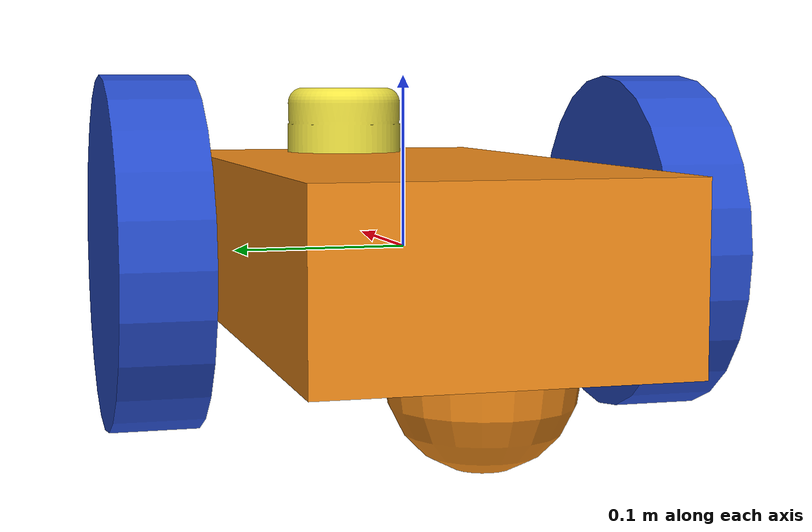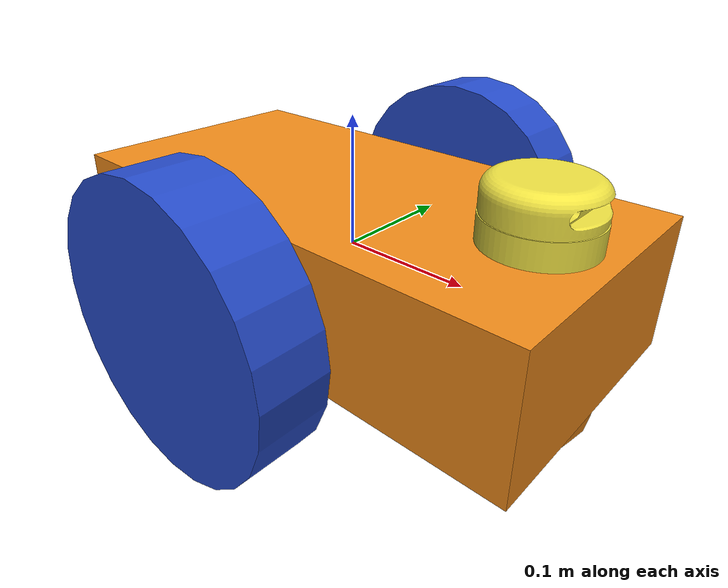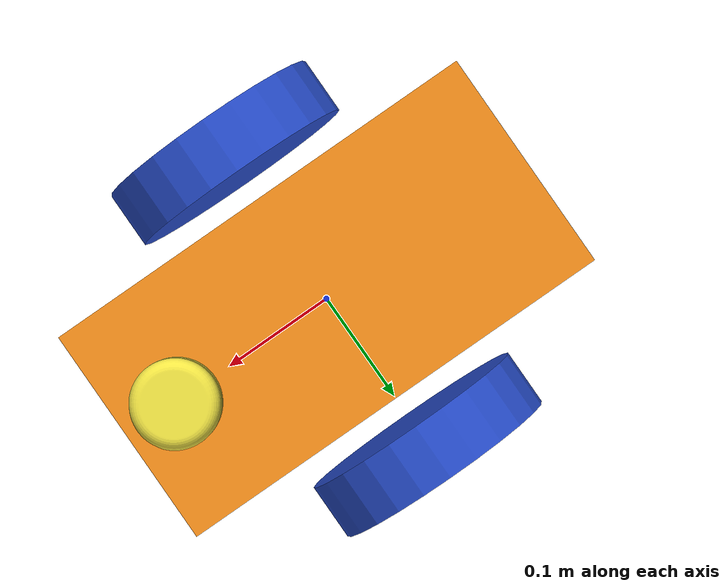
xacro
<?xml version='1.0'?>

<robot name="myrobot" xmlns:xacro="http://www.ros.org/wiki/xacro">

  <xacro:include filename="$(find abrobot_description)/urdf/robot.gazebo" />
  <xacro:include filename="$(find abrobot_description)/urdf/materials.xacro" />

  <link name='chassis'>
    <pose>0 0 0.1 0 0 0</pose>

    <inertial>
      <mass value="15.0"/>
      <origin xyz="0 0 .1" rpy=" 0 0 0"/>
      <inertia
          ixx="0.1" ixy="0" ixz="0"
          iyy="0.1" iyz="0"
          izz="0.1"
      />
    </inertial>

    <collision name='collision'>
      <geometry>
        <box size=".4 .2 .1"/>
      </geometry>
    </collision>

    <visual name='chassis_visual'>
      <origin xyz="0 0 0" rpy=" 0 0 0"/>
      <geometry>
        <box size=".4 .2 .1"/>
      </geometry>
    </visual>

    <collision name='caster_collision'>
      <origin xyz="-0.15 0 -0.05" rpy=" 0 0 0"/>
      <geometry>
        <sphere radius="0.05"/>
      </geometry>
      <surface>
        <friction>
          <ode>
            <mu>0</mu>
            <mu2>0</mu2>
            <slip1>1.0</slip1>
            <slip2>1.0</slip2>
          </ode>
        </friction>
      </surface>
    </collision>

    <visual name='caster_visual'>
      <origin xyz="-0.15 0 -0.05" rpy=" 0 0 0"/>
      <geometry>
        <sphere radius="0.05"/>
      </geometry>
    </visual>

    <collision name='caster_front_collision'>
      <origin xyz="0.15 0 -0.05" rpy=" 0 0 0"/>
      <geometry>
        <sphere radius="0.05"/>
      </geometry>
      <surface>
        <friction>
          <ode>
            <mu>0</mu>
            <mu2>0</mu2>
            <slip1>1.0</slip1>
            <slip2>1.0</slip2>
          </ode>
        </friction>
      </surface>
    </collision>

    <visual name='caster_front_visual'>
      <origin xyz="0.15 0 -0.05" rpy=" 0 0 0"/>
      <geometry>
        <sphere radius="0.05"/>
      </geometry>
    </visual>

  </link>

  <link name="left_wheel">
    <!--origin xyz="0.1 0.13 0.1" rpy="0 1.5707 1.5707"/-->
    <collision name="collision">
      <origin xyz="0 0 0" rpy="0 1.5707 1.5707"/>
      <geometry>
        <cylinder radius="0.1" length="0.05"/>
      </geometry>
    </collision>
    <visual name="left_wheel_visual">
      <origin xyz="0 0 0" rpy="0 1.5707 1.5707"/>
      <geometry>
        <cylinder radius="0.1" length="0.05"/>
      </geometry>
    </visual>
    <inertial>
      <origin xyz="0 0 0" rpy="0 1.5707 1.5707"/>
      <mass value="5"/>
      <inertia
        ixx=".1" ixy="0.0" ixz="0.0"
        iyy=".1" iyz="0.0"
        izz=".1"/>
    </inertial>
  </link>

  <link name="right_wheel">
    <!--origin xyz="0.1 -0.13 0.1" rpy="0 1.5707 1.5707"/-->
    <collision name="collision">
      <origin xyz="0 0 0" rpy="0 1.5707 1.5707"/>
      <geometry>
        <cylinder radius="0.1" length="0.05"/>
      </geometry>
    </collision>
    <visual name="right_wheel_visual">
      <origin xyz="0 0 0" rpy="0 1.5707 1.5707"/>
      <geometry>
        <cylinder radius="0.1" length="0.05"/>
      </geometry>
    </visual>
    <inertial>
      <origin xyz="0 0 0" rpy="0 1.5707 1.5707"/>
      <mass value="5"/>
      <inertia
        ixx=".1" ixy="0.0" ixz="0.0"
        iyy=".1" iyz="0.0"
        izz=".1"/>
    </inertial>
  </link>

  <joint type="continuous" name="left_wheel_hinge">
    <origin xyz="0 0.15 0" rpy="0 0 0"/>
    <!--origin xyz="0.1 0.13 0" rpy="0 1.5707 1.5707"/-->
    <child link="left_wheel"/>
    <parent link="chassis"/>
    <axis xyz="0 1 0" rpy="0 0 0"/>
    <limit effort="10000" velocity="1000"/>
    <joint_properties damping="1.0" friction="1.0"/>
  </joint>

  <joint type="continuous" name="right_wheel_hinge">
    <origin xyz="0 -0.15 0" rpy="0 0 0"/>
    <!--origin xyz="0.1 -0.13 0" rpy="0 1.5707 1.5707"/-->
    <child link="right_wheel"/>
    <parent link="chassis"/>
    <axis xyz="0 1 0" rpy="0 0 0"/>
    <limit effort="10000" velocity="1000"/>
    <joint_properties damping="1.0" friction="1.0"/>
  </joint>

  <joint name="laser_joint" type="fixed">
    <axis xyz="0 1 0" />
    <origin xyz=".15 0 .05" rpy="0 0 0"/>
    <parent link="chassis"/>
    <child link="base_laser"/>
  </joint>

  <!-- Rplidar Laser -->
  <link name="base_laser">
    <collision>
      <origin xyz="0 0 0" rpy="0 0 0"/>
      <geometry>
    <box size="0.1 0.1 0.1"/>
      </geometry>
    </collision>

    <visual>
      <origin xyz="0 0 0" rpy="0 0 0"/>
      <geometry>
        <mesh filename="package://abrobot_description/meshes/rplidar.dae" scale="0.01 0.01 0.01" />
      </geometry>
    </visual>

    <inertial>
      <mass value="1e-5" />
      <origin xyz="0 0 0" rpy="0 0 0"/>
      <inertia ixx="1e-6" ixy="0" ixz="0" iyy="1e-6" iyz="0" izz="1e-6" />
    </inertial>
  </link>
</robot>
